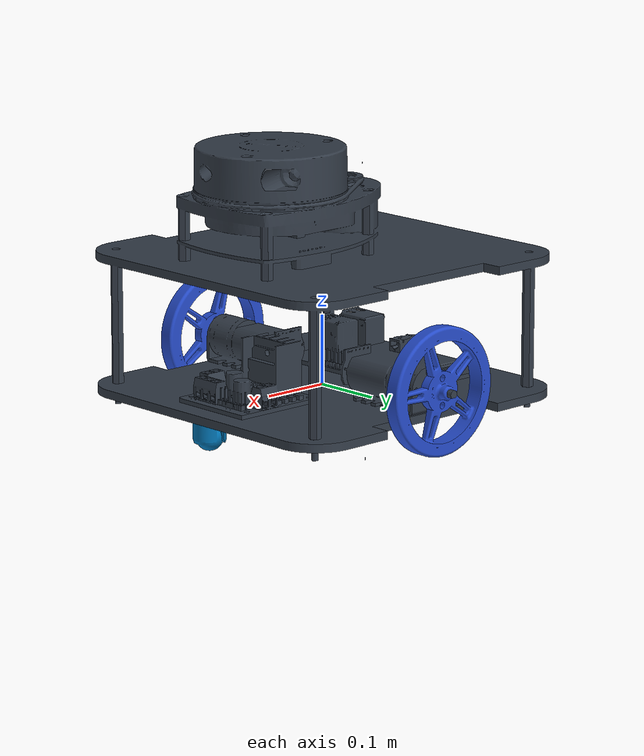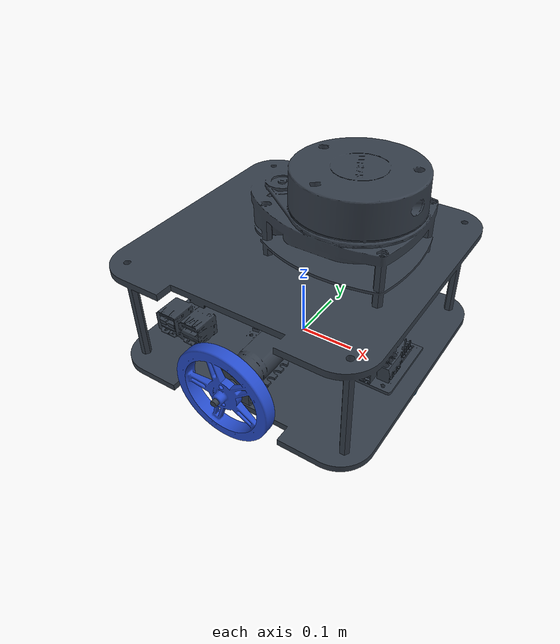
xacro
<?xml version="1.0" ?>
<robot name="mouse" xmlns:xacro="http://www.ros.org/wiki/xacro">
  <material name="black">
    <color rgba="0.0 0.0 0.0 1.0"/>
  </material>
  <material name="blue">
    <color rgba="0.203125 0.23828125 0.28515625 1.0"/>
  </material>
  <material name="green">
    <color rgba="0.0 0.8 0.0 1.0"/>
  </material>
  <material name="grey">
    <color rgba="0.2 0.2 0.2 1.0"/>
  </material>
  <material name="orange">
    <color rgba="1.0 0.423529411765 0.0392156862745 1.0"/>
  </material>
  <material name="brown">
    <color rgba="0.870588235294 0.811764705882 0.764705882353 1.0"/>
  </material>
  <material name="red">
    <color rgba="0.80078125 0.12890625 0.1328125 1.0"/>
  </material>
  <material name="white">
    <color rgba="1.0 1.0 1.0 1.0"/>
  </material>

  <gazebo reference="link_chassis">
    <material>Gazebo/Orange</material>
  </gazebo>
  <gazebo reference="link_caster">
    <material>Gazebo/Gray</material>
  </gazebo>
  <gazebo reference="link_left_wheel">
    <material>Gazebo/Blue</material>
  </gazebo>
  <gazebo reference="link_right_wheel">
    <material>Gazebo/Blue</material>
  </gazebo>

  <!-- ROBOT DESCRIPTION -->
  <!-- Chassis -->
  <link name="chassis_base">
    <collision name="collision_chassis">
      <origin rpy="0 0 0" xyz="0 0 -0.006"/>
      <geometry>
        <box size="0.48 0.48 0.012"/>
      </geometry>
    </collision>
    <visual>
      <origin rpy="0 0 0" xyz="0 0 0"/>
      <geometry>
        <mesh filename="package://maze_generator/urdf/meshes/umouse_base.stl" scale="0.003 0.003 0.003"/>
      </geometry>
      <material name="blue"/>
    </visual>
  </link>

  <link name="chassis_inertia">
    <inertial>
      <mass value="0.2"/>
      <origin rpy="0 0 0" xyz="0 0 -0.006"/>
      <inertia ixx="0.0038424" ixy="0" ixz="0" iyy="0.0038424" iyz="0" izz="0.00768"/>
    </inertial>
  </link>

  <joint name="fixed_inertia" type="fixed">
    <origin rpy="0 0 0" xyz="0 0 0"/>
    <parent link="chassis_base"/>
    <child link="chassis_inertia"/>
  </joint>

  <link name="chassis_sensors">
    <inertial>
      <mass value="0.5"/>
      <origin rpy="0 0 0" xyz="0 0 0.096"/>
      <inertia ixx="0.011136" ixy="0" ixz="0" iyy="0.011136" iyz="0" izz="0.0192"/>
    </inertial>
    <collision name="collision_chassis">
      <origin rpy="0 0 0" xyz="0 0 0.096"/>
      <geometry>
        <box size="0.48 0.48 0.192"/>
      </geometry>
    </collision>
    <visual>
      <origin rpy="0 0 0" xyz="0 0 0"/>
      <geometry>
        <mesh filename="package://maze_generator/urdf/meshes/umouse_lidar.stl" scale="0.003 0.003 0.003"/>
      </geometry>
      <material name="blue"/>
    </visual>
  </link>

  <joint name="fixed_base" type="fixed">
    <origin rpy="0 0 0" xyz="0 0 0"/>
    <parent link="chassis_base"/>
    <child link="chassis_sensors"/>
  </joint>

  <link name="sensor_lidar">
    <inertial>
      <mass value="0.19"/>
      <origin rpy="0 0 0" xyz="0 0 0"/>
      <inertia ixx="0.00121125" ixy="0" ixz="0" iyy="0.001799063" iyz="0" izz="0.001984313"/>
    </inertial>
    <collision>
      <origin xyz="0 0 0" rpy="0 0 0"/>
      <geometry>
        <box size="0.285 0.21 0.18"/>
      </geometry>
    </collision>
  </link>

  <joint name="fixed_sensor" type="fixed">
    <origin rpy="0 0 0" xyz="0.06225 0 0.28"/>
    <parent link="chassis_sensors"/>
    <child link="sensor_lidar"/>
  </joint>

  <!-- Front castor wheel -->
  <link name="fcastor_wheel">
    <visual>
      <origin rpy="0 0 0" xyz="0 0 -0.012"/>
      <geometry>
        <mesh filename="package://maze_generator/urdf/meshes/umouse_casterball.stl" scale="0.003 0.003 0.003"/>
      </geometry>
    </visual>
    <collision>
      <origin rpy="0 0 0" xyz="0 0 -0.03375"/>
      <geometry>
        <sphere radius="0.02175"/>
      </geometry>
    </collision>
    <inertial>
      <origin rpy="0 0 0" xyz="0 0 -0.03375"/>
      <mass value="0.1" />
      <inertia ixx="0.000014516" ixy="0.0" ixz="0.0" iyy="0.000014516" iyz="0.0" izz="0.000014516"/>
    </inertial>
  </link>

  <joint name="base__fcastor_wheel" type="continuous">
    <parent link="chassis_base"/>
    <child link="fcastor_wheel"/>
    <origin xyz="0.21 0 0" rpy="0 0 0"/>
    <axis xyz="0 0 1"/>
  </joint>

  <!-- Back castor wheel -->
  <link name="bcastor_wheel">
    <visual>
      <origin rpy="0 0 0" xyz="0 0 -0.012"/>
      <geometry>
        <mesh filename="package://maze_generator/urdf/meshes/umouse_casterball.stl" scale="0.003 0.003 0.003"/>
      </geometry>
    </visual>
    <collision>
      <origin rpy="0 0 0" xyz="0 0 -0.03375"/>
      <geometry>
        <sphere radius="0.02175"/>
      </geometry>
    </collision>
    <inertial>
      <origin rpy="0 0 0" xyz="0 0 -0.03375"/>
      <mass value="0.1" />
      <inertia ixx="0.000014516" ixy="0.0" ixz="0.0" iyy="0.000014516" iyz="0.0" izz="0.000014516"/>
    </inertial>
  </link>

  <joint name="base__bcastor_wheel" type="continuous">
    <parent link="chassis_base"/>
    <child link="bcastor_wheel"/>
    <origin xyz="-0.21 0 0" rpy="0 0 0"/>
    <axis xyz="0 0 1"/>
  </joint>

  <!-- Right wheel -->
  <link name="link_right_wheel">
    <inertial>
      <mass value="0.12"/>
      <origin rpy="0 1.5707 -1.5707" xyz="0 0 0"/>
      <inertia ixx="0.000252" ixy="0" ixz="0" iyy="0.000252" iyz="0" izz="0.000486"/>
    </inertial>
    <collision name="link_right_wheel_collision">
      <origin rpy="0 1.570796 1.570796" xyz="0 0 0"/>
      <geometry>
        <cylinder length="0.03" radius="0.09"/>
      </geometry>
    </collision>
    <visual name="link_right_wheel_visual">
      <origin rpy="0 0 -1.570796" xyz="0 0 0"/>
      <geometry>
        <mesh filename="package://maze_generator/urdf/meshes/umouse_wheel.stl" scale="0.003 0.003 0.003"/>
      </geometry>
    </visual>
  </link>

  <joint name="joint_right_wheel" type="continuous">
    <origin rpy="0 0 0" xyz="0 0.231 0.0345"/>
    <child link="link_right_wheel"/>
    <parent link="chassis_base"/>
    <axis rpy="0 0 0" xyz="0 1 0"/>
    <limit effort="10000" velocity="1000"/>
    <joint_properties damping="1.0" friction="1.0"/>
  </joint>

  <!-- Left wheel -->
  <link name="link_left_wheel">
    <inertial>
      <mass value="0.12"/>
      <origin rpy="0 1.5707 -1.5707" xyz="0 0 0"/>
      <inertia ixx="0.000252" ixy="0" ixz="0" iyy="0.000252" iyz="0" izz="0.000486"/>
    </inertial>
    <collision name="link_left_wheel_collision">
      <origin rpy="0 1.570796 1.570796" xyz="0 0 0"/>
      <geometry>
        <cylinder length="0.03" radius="0.09"/>
      </geometry>
    </collision>
    <visual name="link_left_wheel_visual">
      <origin rpy="0 0 1.570796" xyz="0 0 0"/>
      <geometry>
        <mesh filename="package://maze_generator/urdf/meshes/umouse_wheel.stl" scale="0.003 0.003 0.003"/>
      </geometry>
    </visual>
  </link>

  <joint name="joint_left_wheel" type="continuous">
    <origin rpy="0 0 0" xyz="0 -0.231 0.0345"/>
    <child link="link_left_wheel"/>
    <parent link="chassis_base"/>
    <axis rpy="0 0 0" xyz="0 1 0"/>
    <limit effort="10000" velocity="1000"/>
    <joint_properties damping="1.0" friction="1.0"/>
  </joint>

  <!-- IMU Sensor -->
  <link name="imu_link"/>

  <joint name="imu_joint" type="fixed">
    <parent link="chassis_base"/>
    <child link="imu_link"/>
    <origin xyz="0 0 0" rpy="0 0 0"/>
  </joint>

  <gazebo reference="imu_link">
    <sensor type="imu" name="imu">
      <always_on>true</always_on>
      <visualize>true</visualize>
    </sensor>
    <material>Gazebo/Grey</material>
  </gazebo>

  <gazebo>
    <plugin name="imu_plugin" filename="libgazebo_ros_imu.so">
      <alwaysOn>true</alwaysOn>
      <bodyName>imu_link</bodyName>
      <frameName>imu_link</frameName>
      <topicName>imu</topicName>
      <serviceName>imu_service</serviceName>
      <gaussianNoise>0.0</gaussianNoise>
      <updateRate>200</updateRate>
      <imu>
        <noise>
          <type>gaussian</type>
          <rate>
            <mean>0.0</mean>
            <stddev>2e-4</stddev>
            <bias_mean>0.0000075</bias_mean>
            <bias_stddev>0.0000008</bias_stddev>
          </rate>
          <accel>
            <mean>0.0</mean>
            <stddev>1.7e-2</stddev>
            <bias_mean>0.1</bias_mean>
            <bias_stddev>0.001</bias_stddev>
          </accel>
        </noise>
      </imu>
    </plugin>
  </gazebo>

  <!-- LiDAR Sensor -->
  <joint name="scan_joint" type="fixed">
    <parent link="chassis_base"/>
    <child link="link_scan"/>
    <origin xyz="0.20 0 0.324" rpy="0 0 -1.57079"/>
  </joint>

  <link name="link_scan">
  </link>

  <gazebo reference="link_scan">
    <sensor type="ray" name="lidar_sensor">
      <pose>0 0 0 0 0 0</pose>
      <visualize>true</visualize>
      <update_rate>5</update_rate>
      <ray>
        <scan>
          <horizontal>
            <samples>360</samples>
            <resolution>1</resolution>
            <min_angle>0.0</min_angle>
            <max_angle>3.14159</max_angle>
          </horizontal>
        </scan>
        <range>
          <min>0.12</min>
          <max>4.8</max>
          <resolution>0.015</resolution>
        </range>
        <noise>
          <type>gaussian</type>
          <mean>0.0</mean>
          <stddev>0.01</stddev>
        </noise>
      </ray>
      <plugin name="gazebo_ros_lidar_controller" filename="libgazebo_ros_laser.so">
        <topicName>scan</topicName>
        <frameName>link_scan</frameName>
      </plugin>
    </sensor>
    <material>Gazebo/FlatBlack</material>
  </gazebo>

  <!-- Controller -->
  <gazebo>
    <plugin name="mouse_controller" filename="libgazebo_ros_diff_drive.so">
      <commandTopic>cmd_vel</commandTopic>
      <odometryTopic>odom</odometryTopic>
      <odometryFrame>odom</odometryFrame>
      <odometrySource>world</odometrySource>
      <publishOdomTF>true</publishOdomTF>
      <robotBaseFrame>chassis_base</robotBaseFrame>
      <publishWheelTF>false</publishWheelTF>
      <publishTf>true</publishTf>
      <publishWheelJointState>true</publishWheelJointState>
      <legacyMode>false</legacyMode>
      <updateRate>30</updateRate>
      <leftJoint>joint_left_wheel</leftJoint>
      <rightJoint>joint_right_wheel</rightJoint>
      <wheelSeparation>0.4635</wheelSeparation>
      <wheelDiameter>0.18</wheelDiameter>
      <wheelAcceleration>1</wheelAcceleration>
      <wheelTorque>30</wheelTorque>
      <rosDebugLevel>na</rosDebugLevel>
    </plugin>
  </gazebo>
</robot>
